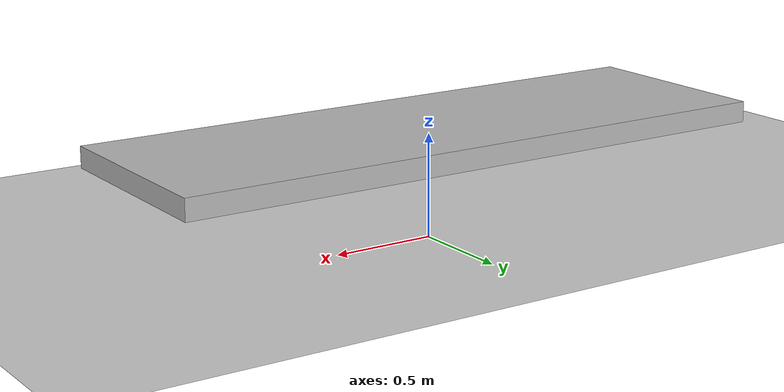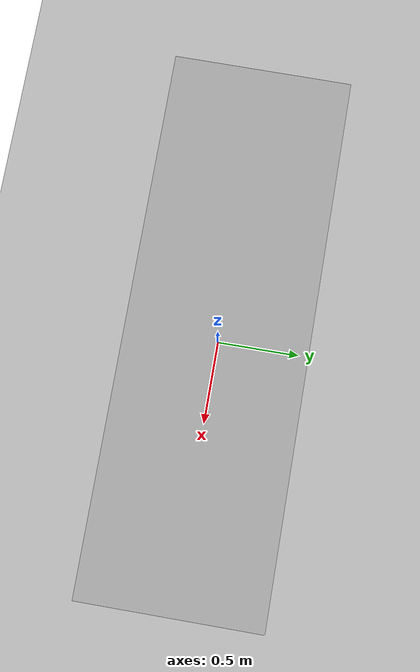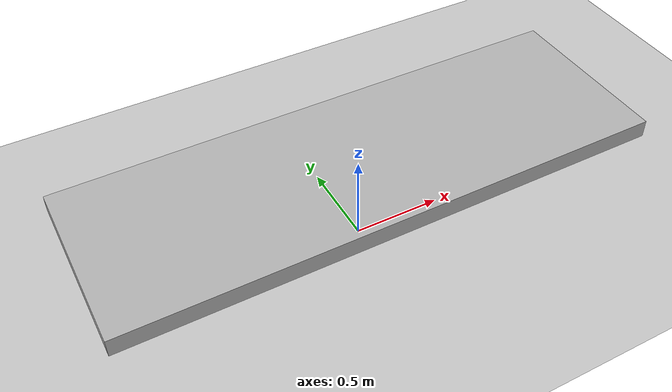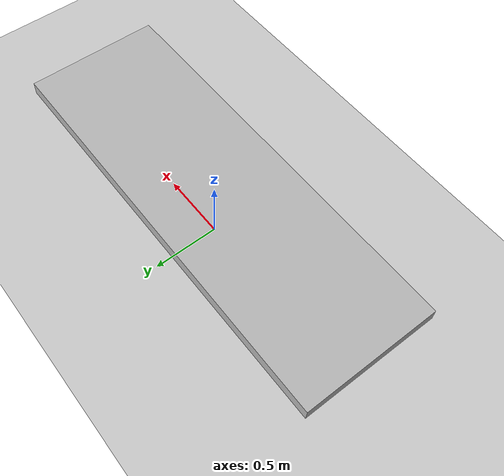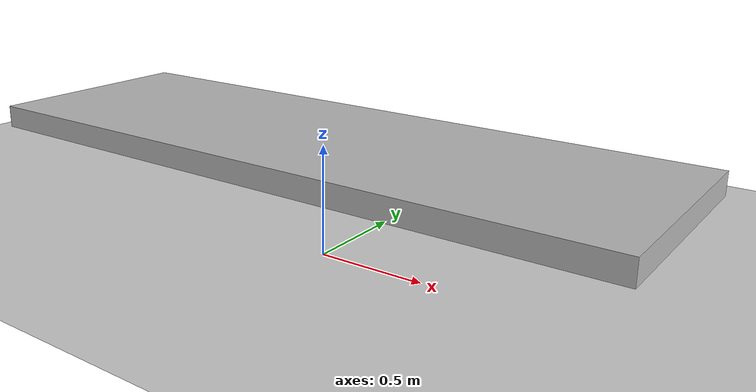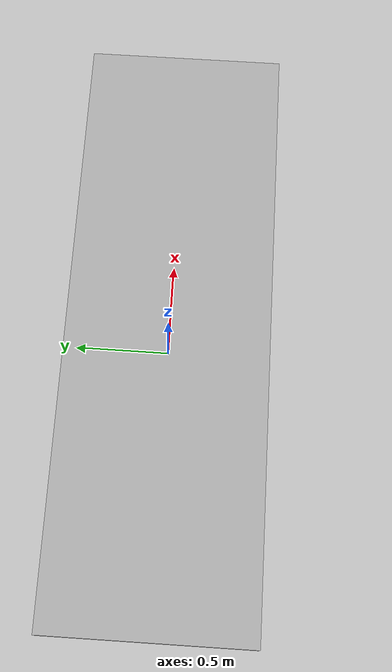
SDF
<?xml version="1.0"?>
<sdf version="1.0">
<world name="default">
  <light name="sun" type="directional">
    <cast_shadows>1</cast_shadows>
    <pose frame="">0 0 10 0 -0 0</pose>
    <diffuse>0.8 0.8 0.8 1</diffuse>
    <specular>0.2 0.2 0.2 1</specular>
    <attenuation>
      <range>1000</range>
      <constant>0.9</constant>
      <linear>0.01</linear>
      <quadratic>0.001</quadratic>
    </attenuation>
    <direction>-0.5 0.1 -0.9</direction>
  </light>
    <model name="my_ground_plane">
      <static>true</static>
      <pose>0 0 0.2 0 0 0</pose>
        <link name="link">
          <collision name="collision">
            <geometry>
              <plane>
                <normal>0 0 1</normal>
                <size>100 100</size>
              </plane>
            </geometry>
            <surface>
              <friction>
                <ode>
                  <mu>100</mu>
                  <mu2>50</mu2>
                </ode>
              </friction>
            </surface>
          </collision>
          <visual name="visual">
            <cast_shadows>false</cast_shadows>
            <geometry>
              <plane>
                <normal>0 0 1</normal>
                <size>100 100</size>
              </plane>
            </geometry>
          </visual>
        </link>
  </model>
  <model name="model_00">
    <pose>0 0 0.5 0 0 0</pose>
    <link name="link_00">
      <pose>0.0 0 0 0 0 0</pose>
      <collision name="collision_00">
        <geometry>
            <box>
              <size>3 1 0.1</size>
            </box>
        </geometry>
      </collision>
      <visual name="visual_00">
        <geometry>
          <box>
            <size>3 1 0.1</size>
          </box>
        </geometry>
      </visual>
    </link>
</model>
  </world>
</sdf>
